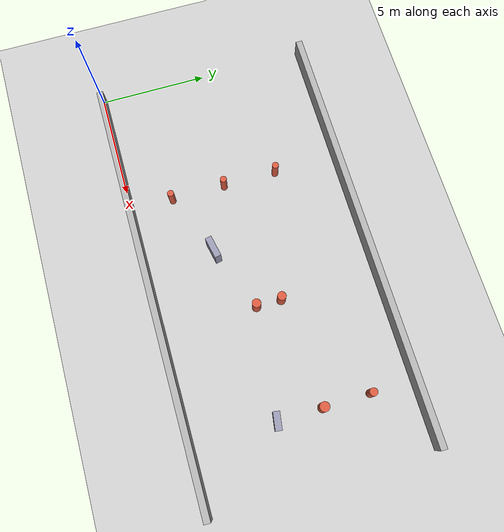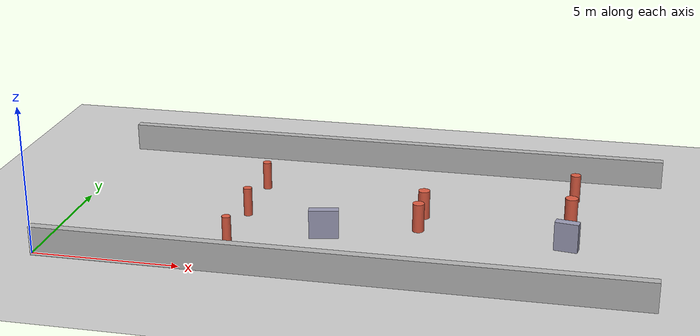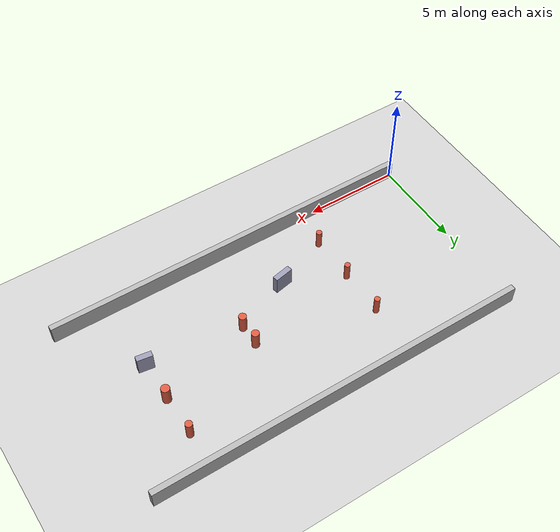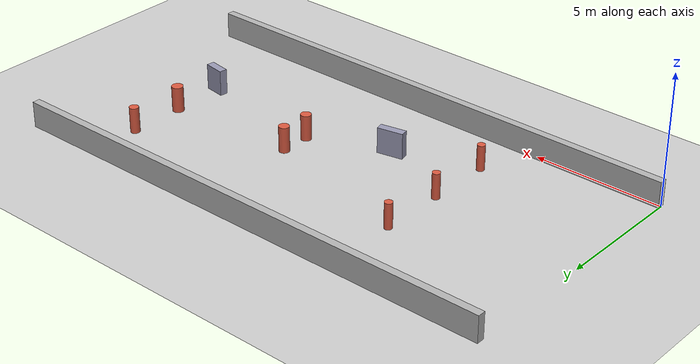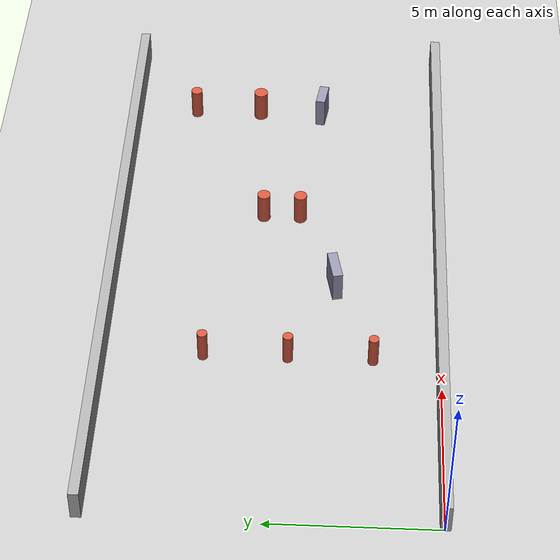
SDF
<sdf version="1.6">
 <world name="tb3_clutter">
  <physics type="ode"><max_step_size>0.001</max_step_size><real_time_factor>1</real_time_factor></physics>
  <include><uri>model://sun</uri></include>
  <include><uri>model://ground_plane</uri></include>
  <model name="top_wall">
   <static>true</static>
   <pose>10 10 0.5 0 0 0</pose>
   <link name="link">
    <collision name="c"><geometry><box><size>20 0.3 1</size></box></geometry></collision>
    <visual name="v">
     <geometry><box><size>20 0.3 1</size></box></geometry>
     <material><ambient>0.7 0.7 0.7 1</ambient></material>
    </visual>
   </link>
  </model>
  <model name="bottom_wall">
   <static>true</static>
   <pose>10 0 0.5 0 0 0</pose>
   <link name="link">
    <collision name="c"><geometry><box><size>20 0.3 1</size></box></geometry></collision>
    <visual name="v">
     <geometry><box><size>20 0.3 1</size></box></geometry>
     <material><ambient>0.7 0.7 0.7 1</ambient></material>
    </visual>
   </link>
  </model>
  <model name="p1a">
   <static>true</static>
   <pose>6 2.0 0.5 0 0 0</pose>
   <link name="link">
    <collision name="c">
     <geometry><cylinder><radius>0.15</radius><length>1</length></cylinder></geometry>
    </collision>
    <visual name="v">
     <geometry><cylinder><radius>0.15</radius><length>1</length></cylinder></geometry>
     <material><ambient>0.85 0.35 0.25 1</ambient></material>
    </visual>
   </link>
  </model>
  <model name="p1b">
   <static>true</static>
   <pose>6 4.5 0.5 0 0 0</pose>
   <link name="link">
    <collision name="c">
     <geometry><cylinder><radius>0.15</radius><length>1</length></cylinder></geometry>
    </collision>
    <visual name="v">
     <geometry><cylinder><radius>0.15</radius><length>1</length></cylinder></geometry>
     <material><ambient>0.85 0.35 0.25 1</ambient></material>
    </visual>
   </link>
  </model>
  <model name="p1c">
   <static>true</static>
   <pose>6 7.0 0.5 0 0 0</pose>
   <link name="link">
    <collision name="c">
     <geometry><cylinder><radius>0.15</radius><length>1</length></cylinder></geometry>
    </collision>
    <visual name="v">
     <geometry><cylinder><radius>0.15</radius><length>1</length></cylinder></geometry>
     <material><ambient>0.85 0.35 0.25 1</ambient></material>
    </visual>
   </link>
  </model>
  <model name="blk1">
   <static>true</static>
   <pose>9 3.2 0.5 0 0 0.2</pose>
   <link name="link">
    <collision name="c"><geometry><box><size>1.0 0.3 1</size></box></geometry></collision>
    <visual name="v">
     <geometry><box><size>1.0 0.3 1</size></box></geometry>
     <material><ambient>0.6 0.6 0.7 1</ambient></material>
    </visual>
   </link>
  </model>
  <model name="p2a">
   <static>true</static>
   <pose>12 4.35 0.5 0 0 0</pose>
   <link name="link">
    <collision name="c">
     <geometry><cylinder><radius>0.20</radius><length>1</length></cylinder></geometry>
    </collision>
    <visual name="v">
     <geometry><cylinder><radius>0.20</radius><length>1</length></cylinder></geometry>
     <material><ambient>0.85 0.35 0.25 1</ambient></material>
    </visual>
   </link>
  </model>
  <model name="p2b">
   <static>true</static>
   <pose>12 5.50 0.5 0 0 0</pose>
   <link name="link">
    <collision name="c">
     <geometry><cylinder><radius>0.20</radius><length>1</length></cylinder></geometry>
    </collision>
    <visual name="v">
     <geometry><cylinder><radius>0.20</radius><length>1</length></cylinder></geometry>
     <material><ambient>0.85 0.35 0.25 1</ambient></material>
    </visual>
   </link>
  </model>
  <model name="blk2">
   <static>true</static>
   <pose>17 3.8 0.5 0 0 -0.15</pose>
   <link name="link">
    <collision name="c"><geometry><box><size>0.8 0.3 1</size></box></geometry></collision>
    <visual name="v">
     <geometry><box><size>0.8 0.3 1</size></box></geometry>
     <material><ambient>0.6 0.6 0.7 1</ambient></material>
    </visual>
   </link>
  </model>
  <model name="p3a">
   <static>true</static>
   <pose>17 5.85 0.5 0 0 0</pose>
   <link name="link">
    <collision name="c">
     <geometry><cylinder><radius>0.22</radius><length>1</length></cylinder></geometry>
    </collision>
    <visual name="v">
     <geometry><cylinder><radius>0.22</radius><length>1</length></cylinder></geometry>
     <material><ambient>0.85 0.35 0.25 1</ambient></material>
    </visual>
   </link>
  </model>
  <model name="p3b">
   <static>true</static>
   <pose>17 8.0 0.5 0 0 0</pose>
   <link name="link">
    <collision name="c">
     <geometry><cylinder><radius>0.18</radius><length>1</length></cylinder></geometry>
    </collision>
    <visual name="v">
     <geometry><cylinder><radius>0.18</radius><length>1</length></cylinder></geometry>
     <material><ambient>0.85 0.35 0.25 1</ambient></material>
    </visual>
   </link>
  </model>
 </world>
</sdf>
